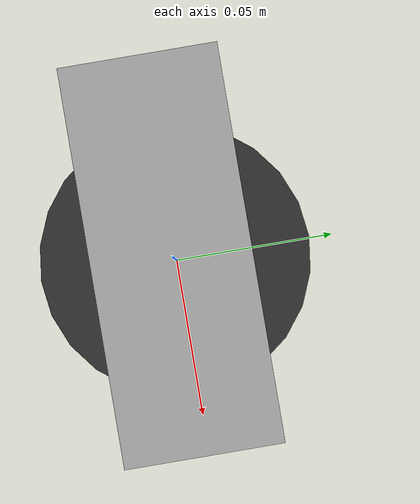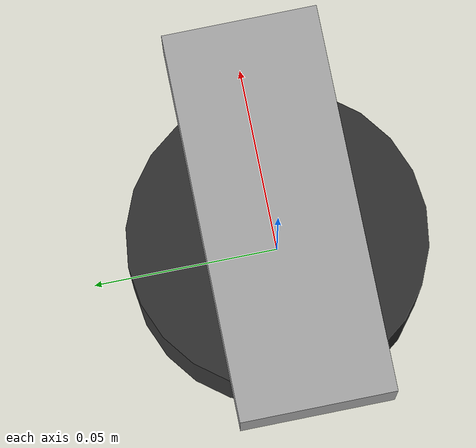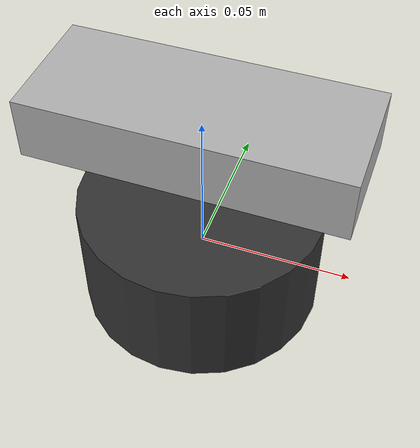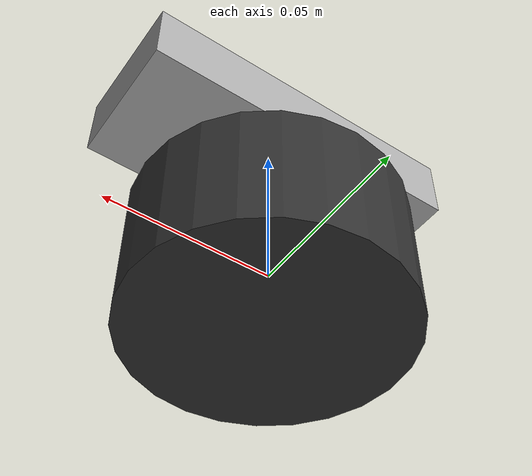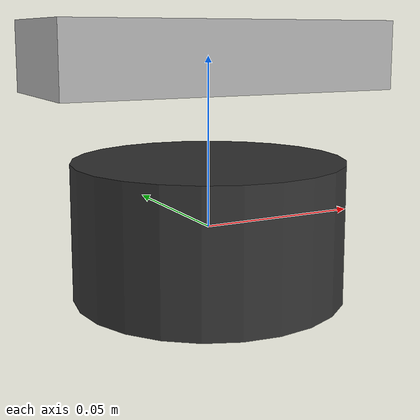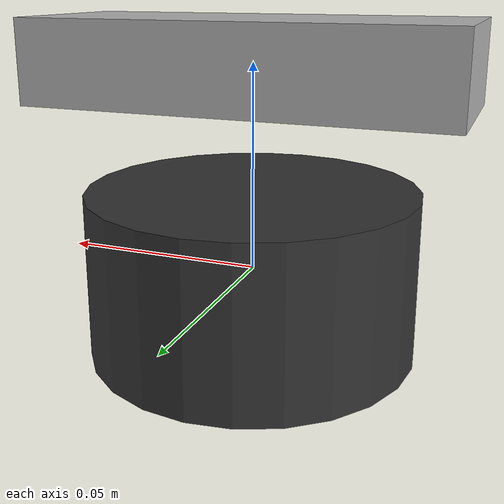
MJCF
<mujoco model="unitree_go1_motor_joint">
  <compiler angle="radian" autolimits="true" inertiafromgeom="false"/>
  <option timestep="0.001" integrator="RK4" gravity="0 0 0"/>

  <default>
    <!-- Identified from coverage_capture_20260204_103129.csv -->
    <!-- Stribeck friction fitted (pos/neg). MJCF uses symmetric frictionloss + damping -->
    <!-- frictionloss ~= mean(|tau_c|), damping ~= mean(b), armature ~= J -->
    <joint damping="-0.001913" frictionloss="0.037064" armature="0.000111842"/>
    <geom type="capsule" size="0.02" rgba="0.7 0.7 0.7 1"/>
  </default>

    <worldbody>
        <light directional="true" diffuse=".8 .8 .8" specular=".2 .2 .2" pos="0 0 5" dir="0 0 -1"/>

        <!-- 基座 -->
        <body name="base" pos="0 0 0">
            <!-- Explicit inertial to avoid auto-geom inertia -->
            <inertial pos="0 0 0" mass="1.0" diaginertia="1e-4 1e-4 1e-4"/>
            <geom type="cylinder" size="0.04 0.02" rgba="0.2 0.2 0.2 1"/>

            <!-- 关节连接：应用 Unitree Go1 动力学参数 -->
            <body name="link1" pos="0 0 0.05">
                <!-- Explicit inertial to avoid auto-geom inertia -->
                <inertial pos="0 0 0" mass="0.01" diaginertia="1e-6 1e-6 1e-6"/>
                <joint name="go1_joint" axis="0 0 1"/>
                <geom type="box" size="0.05 0.02 0.01" pos="0 0 0"/>
            </body>
        </body>
    </worldbody>

</mujoco>
